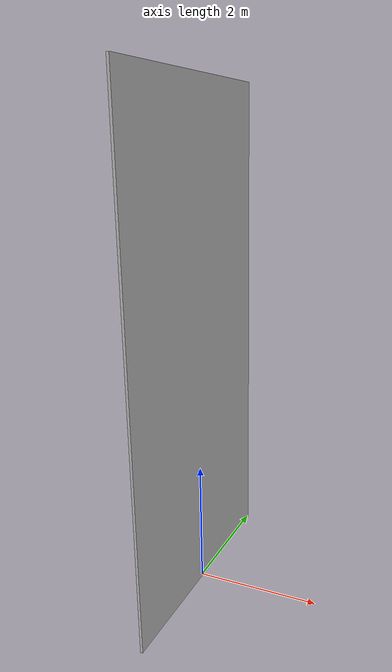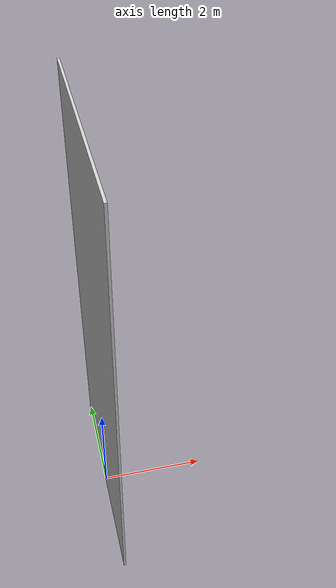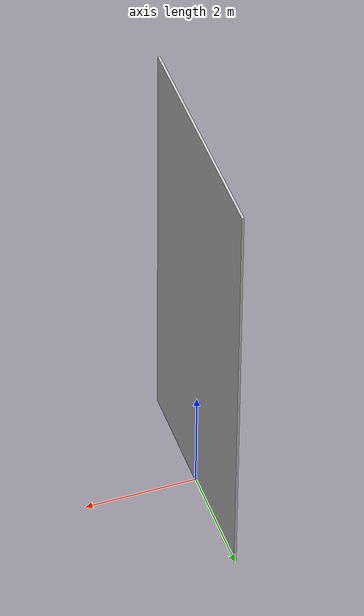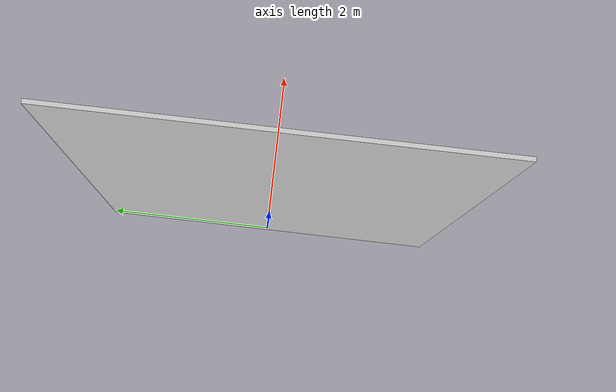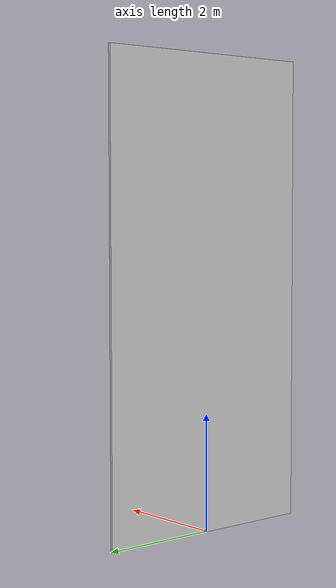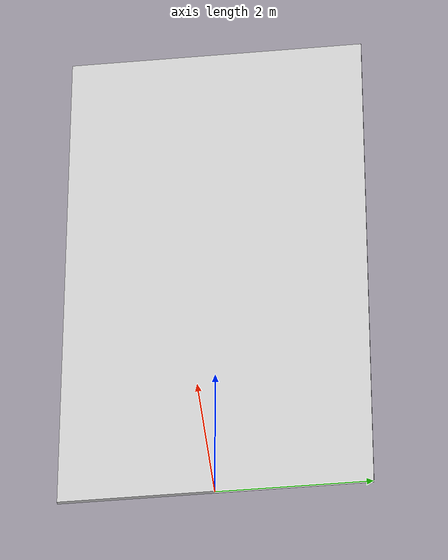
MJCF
<mujoco model="background">
  <compiler angle="radian" autolimits="true"/>

  <asset>
    <material name="box_mat" rgba="0.8 0.8 0.8 1" specular="0.4" shininess="0.2"/>
  </asset>

  <worldbody>
    <body name="box" pos="0 0 4">
      <geom name="box_geom" type="box" size="0.02 2 4"
            mass="0.1" material="box_mat" condim="6"
            friction="0.3 0.005 0.001"
            solimp="0.95 0.99 0.001" solref="0.02 1.0"/>
      <site name="box_center" pos="0 0 0" size="0.003" rgba="1 0 0 1"/>
    </body>
  </worldbody>
</mujoco>
